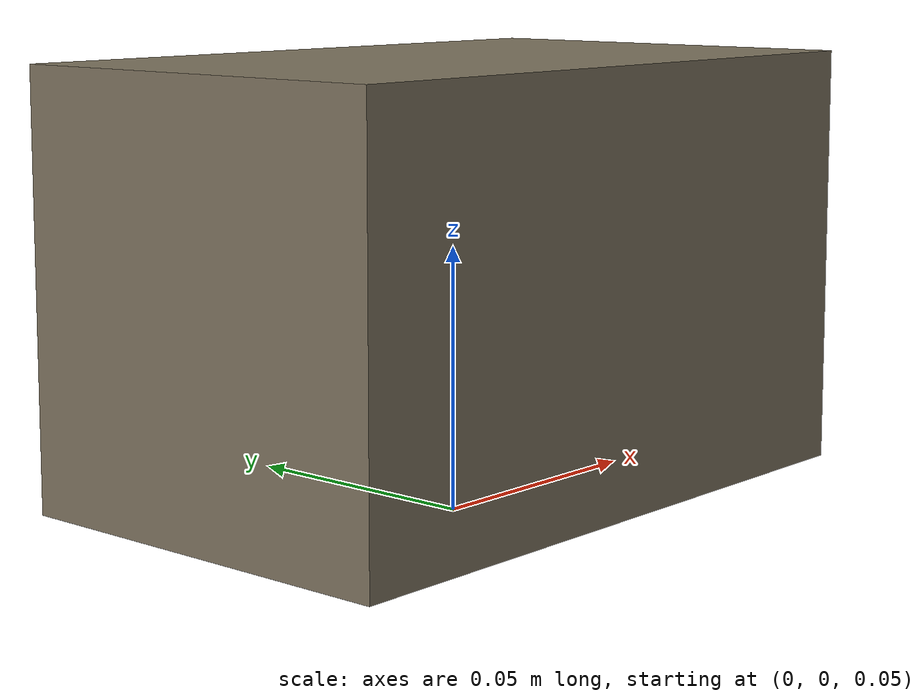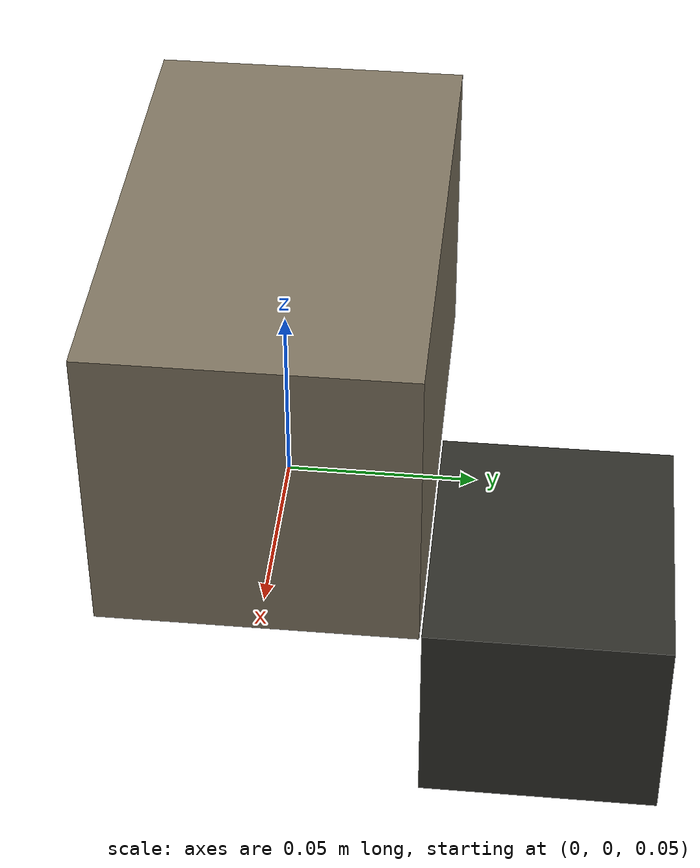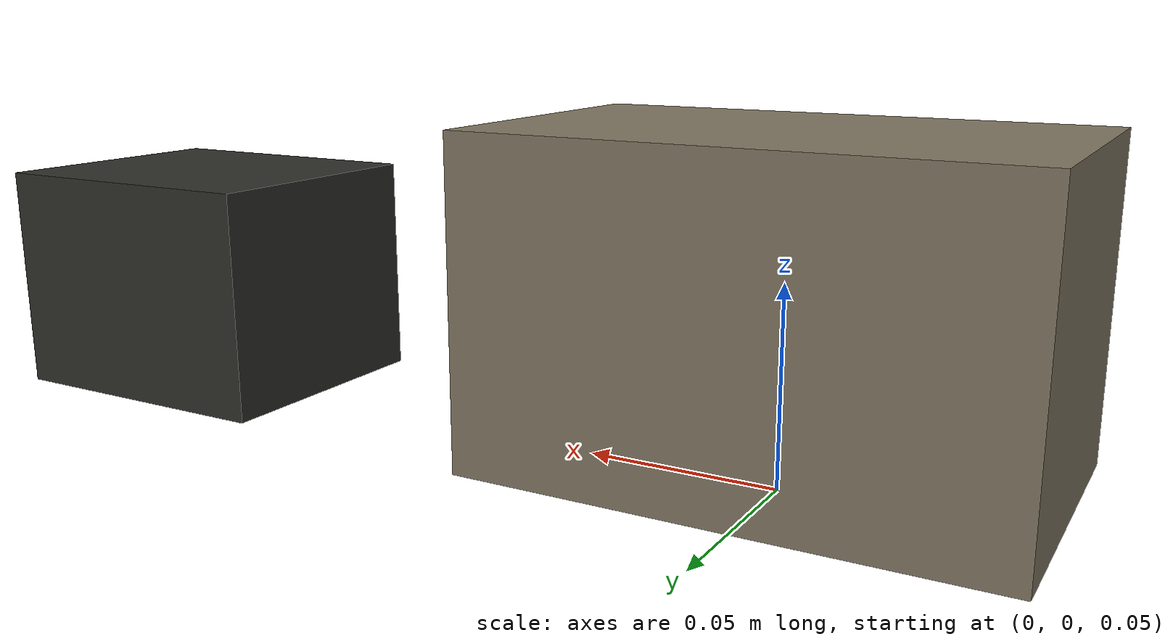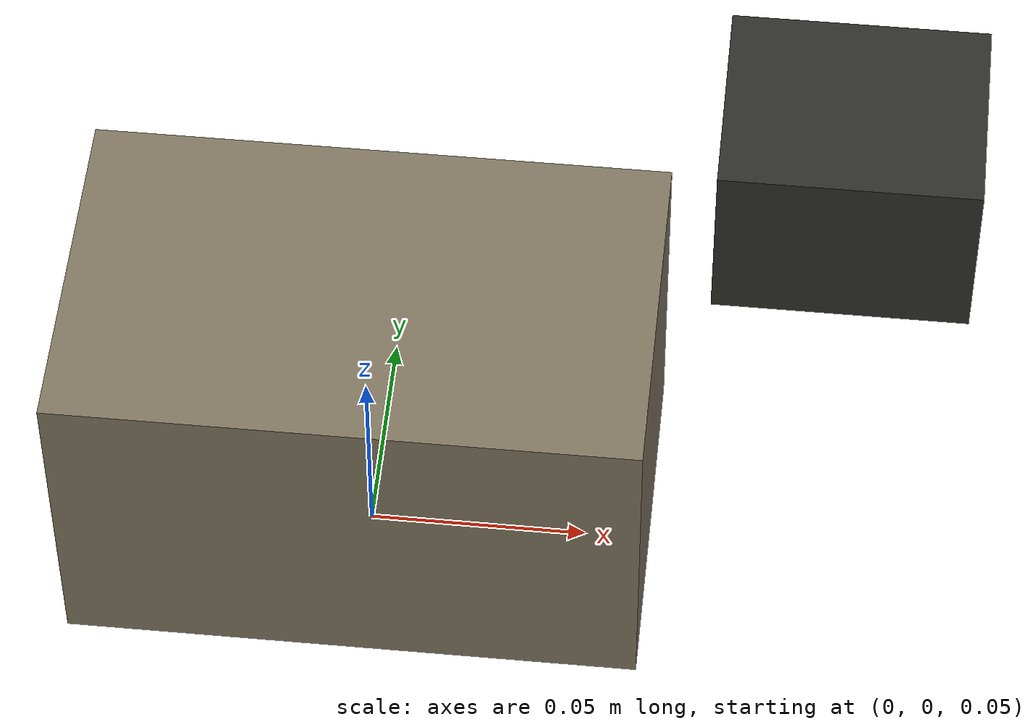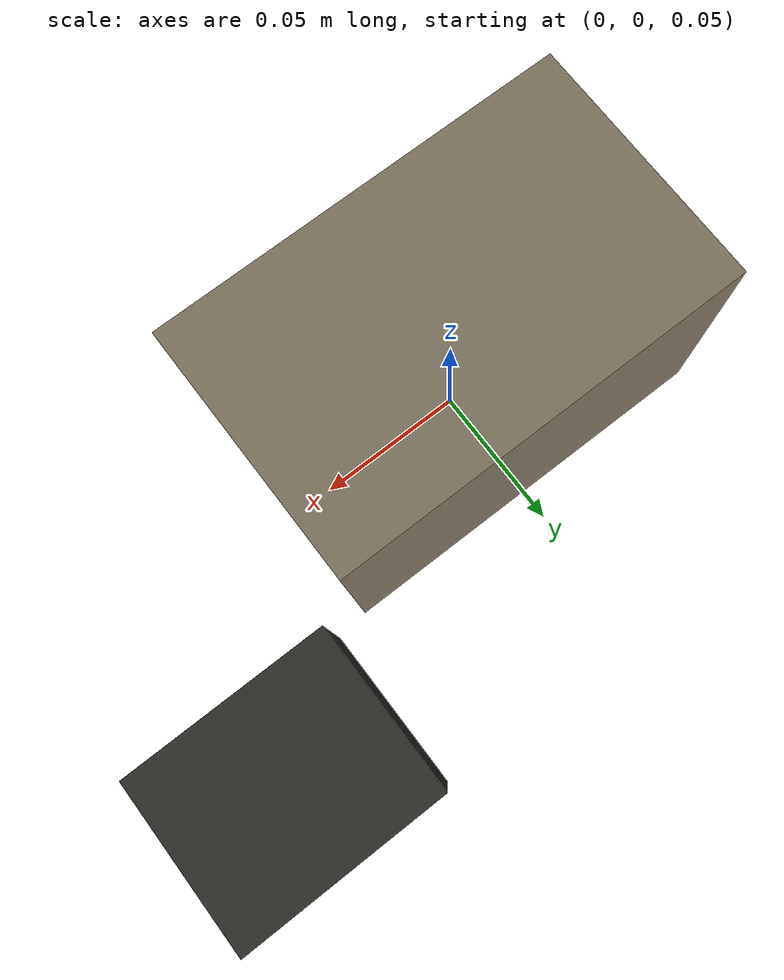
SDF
<?xml version="1.0"?>
<sdf version="1.9">
  <model name="room315_vla_payload_partial_marker_occluder">
    <static>false</static>
    <link name="payload_link">
      <kinematic>true</kinematic>
      <gravity>false</gravity>
      <visual name="center_payload_body">
        <pose>0 0 0.095 0 0 0</pose>
        <geometry><box><size>0.130 0.080 0.080</size></box></geometry>
        <material><ambient>0.50 0.46 0.38 1</ambient><diffuse>0.50 0.46 0.38 1</diffuse><specular>0.08 0.08 0.08 1</specular></material>
      </visual>
      <visual name="partial_front_left_marker_occluder">
        <pose>0.105 0.070 0.105 0 0 0</pose>
        <geometry><box><size>0.060 0.050 0.045</size></box></geometry>
        <material><ambient>0.18 0.18 0.16 1</ambient><diffuse>0.18 0.18 0.16 1</diffuse><specular>0.05 0.05 0.05 1</specular></material>
      </visual>
      <collision name="partial_occluder_collision">
        <pose>0 0 0.095 0 0 0</pose>
        <geometry><box><size>0.130 0.080 0.080</size></box></geometry>
        <surface><contact><collide_bitmask>0x0000</collide_bitmask></contact></surface>
      </collision>
    </link>
  </model>
</sdf>
